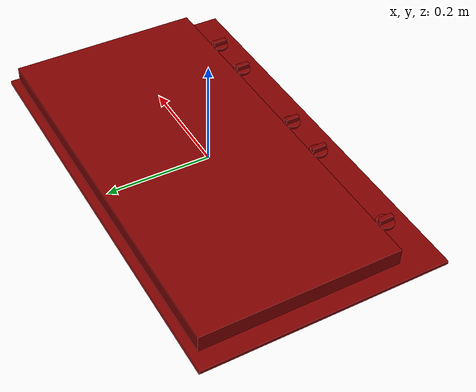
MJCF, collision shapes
<?xml version='1.0' encoding='UTF-8'?>
<mujoco model="model">
  <option timestep="0.002" gravity="0.0 0.0 -9.81"/>
  <compiler angle="radian"/>
  <asset>
    <mesh file="visuals/knob_front_center.obj" name="knob_front_center_vis"/>
    <mesh file="visuals/knob_front_right.obj" name="knob_front_right_vis"/>
    <mesh file="visuals/knob_left.obj" name="knob_left_vis"/>
    <mesh file="visuals/knob_rear_center.obj" name="knob_rear_center_vis"/>
    <mesh file="visuals/knob_rear_right.obj" name="knob_rear_right_vis"/>
    <mesh file="visuals/Body001.obj" name="Body001_vis"/>
    <texture file="visuals/T_BC001.png" name="Body001_material" type="2d"/>
    <material name="Body001_material" rgba="1 1 1 1.0" texture="Body001_material" shininess="0.1" specular="0.99"/>
    <texture file="visuals/T_BC001.png" name="knob_front_center_material" type="2d"/>
    <material name="knob_front_center_material" rgba="1 1 1 1.0" texture="knob_front_center_material" shininess="0.5" specular="0.99"/>
    <texture file="visuals/T_BC001.png" name="knob_front_right_material" type="2d"/>
    <material name="knob_front_right_material" rgba="1 1 1 1.0" texture="knob_front_right_material" shininess="0.5" specular="0.99"/>
    <texture file="visuals/T_BC001.png" name="knob_left_material" type="2d"/>
    <material name="knob_left_material" rgba="1 1 1 1.0" texture="knob_left_material" shininess="0.5" specular="0.99"/>
    <texture file="visuals/T_BC001.png" name="knob_rear_center_material" type="2d"/>
    <material name="knob_rear_center_material" rgba="1 1 1 1.0" texture="knob_rear_center_material" shininess="0.5" specular="0.99"/>
    <texture file="visuals/T_BC001.png" name="knob_rear_right_material" type="2d"/>
    <material name="knob_rear_right_material" rgba="1 1 1 1.0" texture="knob_rear_right_material" shininess="0.5" specular="0.99"/>
  </asset>
  <default>
    <default class="visual">
      <geom conaffinity="0" contype="0" group="1" type="mesh"/>
    </default>
    <default class="collision">
      <geom group="0" rgba="0.5 0 0 0.5"/>
    </default>
    <default class="spawn">
      <geom group="0" rgba="1 1 1 0.5" contype="0" conaffinity="0"/>
      <site group="0" rgba="1 1 1 0.5"/>
    </default>
    <default class="region">
      <geom group="1" conaffinity="0" contype="0" rgba="0 1 0 0"/>
    </default>
  </default>
  <worldbody>
    <body>
      <body name="object">
        <geom mesh="Body001_vis" type="mesh" solimp="0.998 0.998 0.001" solref="0.001 1" friction="0.95 0.3 0.1" class="visual" material="Body001_material"/>
        <geom class="collision" type="box" pos="5.906820297241211e-05 0.00010674446821212769 -0.016289424151182175" size="0.40006643533706665 0.23239582777023315 0.003530415240675211" quat="1.0 0.0 0.0 0.0"/>
        <geom class="collision" type="box" pos="0.011977553367614746 0.029301635921001434 -4.608620656654239e-05" size="0.3781387209892273 0.18757067620754242 0.019773751497268677" quat="1.0 0.0 0.0 0.0"/>
        <body name="knob_front_center">
          <joint axis="0.0 0.0 1.0" pos="-0.07424838840961456 -0.18865224719047546 -0.003409862518310547" limited="true" name="knob_front_center_joint" range="0.0 3.141592653589793" type="hinge" damping="0.2" armature="0.01" frictionloss="1"/>
          <geom mesh="knob_front_center_vis" type="mesh" solimp="0.998 0.998 0.001" solref="0.001 1" friction="0.95 0.3 0.1" class="visual" material="knob_front_center_material"/>
          <geom class="collision" type="cylinder" pos="-0.07424838840961456 -0.18865224719047546 -0.006851432379335165" size="0.01683432050049305 0.0028961084317415953" quat="1.0 0.0 0.0 0.0" friction="100 0.5 0.01"/>
          <geom class="collision" type="box" pos="-0.07424838840961456 -0.18865224719047546 0.0007883296348154545" size="0.004573558922857046 0.014032300561666489 0.004959801211953163" quat="1.0 0.0 0.0 0.0" name="knob_front_center_main" friction="100 0.5 0.01"/>
        </body>
        <body name="knob_front_right">
          <joint axis="0.0 0.0 1.0" pos="0.3017478585243225 -0.18865200877189636 -0.0034098848700523376" limited="true" name="knob_front_right_joint" range="0.0 3.141592653589793" type="hinge" damping="0.2" armature="0.01" frictionloss="1"/>
          <geom mesh="knob_front_right_vis" type="mesh" solimp="0.998 0.998 0.001" solref="0.001 1" friction="0.95 0.3 0.1" class="visual" material="knob_front_right_material"/>
          <geom class="collision" type="cylinder" pos="0.3017478585243225 -0.18865200877189636 -0.006851449143141508" size="0.01683431677520275 0.002896112622693181" quat="1.0 0.0 0.0 0.0" friction="100 0.5 0.01"/>
          <geom class="collision" type="box" pos="0.3017478585243225 -0.18865200877189636 0.0007883072830736637" size="0.004573558922857046 0.014032300561666489 0.004959801211953163" quat="1.0 0.0 0.0 0.0" name="knob_front_right_main" friction="100 0.5 0.01"/>
        </body>
        <body name="knob_left">
          <joint axis="0.0 0.0 1.0" pos="-0.2817784547805786 -0.18865224719047546 -0.003409862518310547" limited="true" name="knob_left_joint" range="0.0 3.141592653589793" type="hinge" damping="0.2" armature="0.01" frictionloss="1"/>
          <geom mesh="knob_left_vis" type="mesh" solimp="0.998 0.998 0.001" solref="0.001 1" friction="0.95 0.3 0.1" class="visual" material="knob_left_material"/>
          <geom class="collision" type="cylinder" pos="-0.28177839517593384 -0.18865224719047546 -0.006851432379335165" size="0.01683431677520275 0.0028961137868463993" quat="1.0 0.0 0.0 0.0" friction="100 0.5 0.01"/>
          <geom class="collision" type="box" pos="-0.2817784547805786 -0.18865224719047546 0.0007883314974606037" size="0.004573558922857046 0.014032300561666489 0.004959801211953163" quat="1.0 0.0 0.0 0.0" name="knob_left_main" friction="100 0.5 0.01"/>
        </body>
        <body name="knob_rear_center">
          <joint axis="0.0 0.0 1.0" pos="0.018960438668727875 -0.18865224719047546 -0.003409862518310547" limited="true" name="knob_rear_center_joint" range="0.0 3.141592653589793" type="hinge" damping="0.2" armature="0.01" frictionloss="1"/>
          <geom mesh="knob_rear_center_vis" type="mesh" solimp="0.998 0.998 0.001" solref="0.001 1" friction="0.95 0.3 0.1" class="visual" material="knob_rear_center_material"/>
          <geom class="collision" type="cylinder" pos="0.018960438668727875 -0.18865224719047546 -0.006851432379335165" size="0.01683431677520275 0.002896109828725457" quat="1.0 0.0 0.0 0.0" friction="100 0.5 0.01"/>
          <geom class="collision" type="box" pos="0.018960438668727875 -0.18865224719047546 0.0007883296348154545" size="0.004573558922857046 0.014032300561666489 0.004959801211953163" quat="1.0 0.0 0.0 0.0" name="knob_rear_center_main" friction="100 0.5 0.01"/>
        </body>
        <body name="knob_rear_right">
          <joint axis="0.0 0.0 1.0" pos="0.2079877108335495 -0.18865224719047546 -0.003409862518310547" limited="true" name="knob_rear_right_joint" range="0.0 3.141592653589793" type="hinge" damping="0.2" armature="0.01" frictionloss="1"/>
          <geom mesh="knob_rear_right_vis" type="mesh" solimp="0.998 0.998 0.001" solref="0.001 1" friction="0.95 0.3 0.1" class="visual" material="knob_rear_right_material"/>
          <geom class="collision" type="cylinder" pos="0.2079877108335495 -0.18865224719047546 -0.006851432379335165" size="0.01683431677520275 0.002896111225709319" quat="1.0 0.0 0.0 0.0" friction="100 0.5 0.01"/>
          <geom class="collision" type="box" pos="0.2079877108335495 -0.18865224719047546 0.0007883296348154545" size="0.004573558922857046 0.014032300561666489 0.004959801211953163" quat="1.0 0.0 0.0 0.0" name="knob_rear_right_main" friction="100 0.5 0.01"/>
        </body>
        <site type="cylinder" rgba="0.3 0.4 1 0.5" size="0.013540485873818398 0.0060996972024440765" pos="-0.277505099773407 0.02159762568771839 0.008646183647215366" name="burner_on_left"/>
        <site type="cylinder" rgba="0.3 0.4 1 0.5" size="0.03326127305626869 0.006099697668105364" pos="-0.027394404634833336 0.11987411230802536 0.008646183647215366" name="burner_on_rear_center"/>
        <site type="cylinder" rgba="0.3 0.4 1 0.5" size="0.0334642268717289 0.006099696736782789" pos="-0.027243534103035927 -0.05622485652565956 0.008646182715892792" name="burner_on_front_center"/>
        <site type="cylinder" rgba="0.3 0.4 1 0.5" size="0.0333968885242939 0.006099696736782789" pos="0.252864271402359 -0.056179583072662354 0.008646182715892792" name="burner_on_front_right"/>
        <site type="cylinder" rgba="0.3 0.4 1 0.5" size="0.0335719995200634 0.006099698133766651" pos="0.2530604898929596 0.12009247392416 0.008646182715892792" name="burner_on_rear_right"/>
        <site type="cylinder" rgba="0.5 0 0 0" size="0.0334642268717289 5.0000002374872565e-05" pos="-0.027243534103035927 -0.05622485652565956 0.019575530663132668" name="burner_front_center_place_site"/>
        <site type="cylinder" rgba="0.5 0 0 0" size="0.0333968885242939 5.0000002374872565e-05" pos="0.252864271402359 -0.056179583072662354 0.019575530663132668" name="burner_front_right_place_site"/>
        <site type="cylinder" rgba="0.5 0 0 0" size="0.013540485873818398 4.999999873689376e-05" pos="-0.277505099773407 0.02159762568771839 0.019575530663132668" name="burner_left_place_site"/>
        <site type="cylinder" rgba="0.5 0 0 0" size="0.03326127305626869 4.999999509891495e-05" pos="-0.027394404634833336 0.11987411230802536 0.019575530663132668" name="burner_rear_center_place_site"/>
        <site type="cylinder" rgba="0.5 0 0 0" size="0.0335719995200634 4.999999873689376e-05" pos="0.2530604898929596 0.12009247392416 0.019575530663132668" name="burner_rear_right_place_site"/>
        <geom class="region" name="reg_main" type="box" pos="0.0 0.0 -0.016056081280112267" size="0.40103371238708496 0.23357189989089966 0.004678206354379654"/>
      </body>
    </body>
  </worldbody>
  <actuator>
    <motor name="knob_front_center_joint_actuator" joint="knob_front_center_joint" gear="10"/>
    <motor name="knob_front_right_joint_actuator" joint="knob_front_right_joint" gear="10"/>
    <motor name="knob_left_joint_actuator" joint="knob_left_joint" gear="10"/>
    <motor name="knob_rear_center_joint_actuator" joint="knob_rear_center_joint" gear="10"/>
    <motor name="knob_rear_right_joint_actuator" joint="knob_rear_right_joint" gear="10"/>
  </actuator>
</mujoco>
